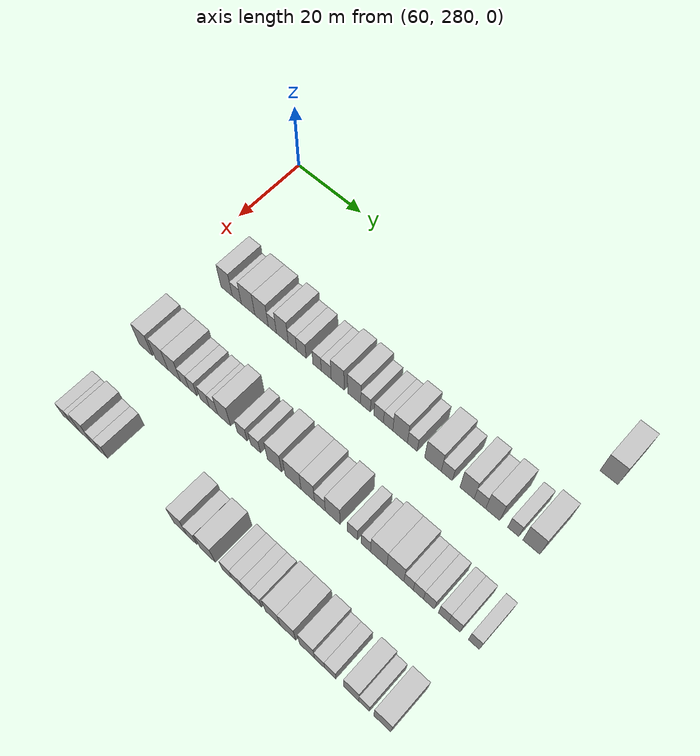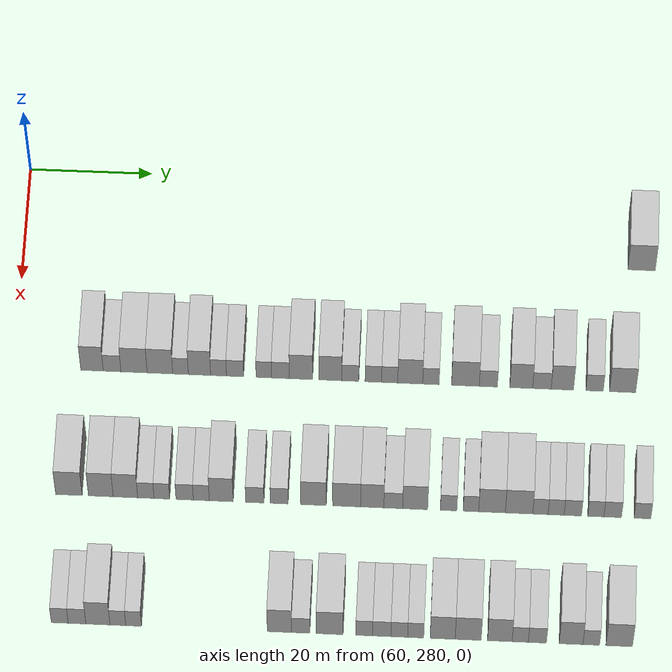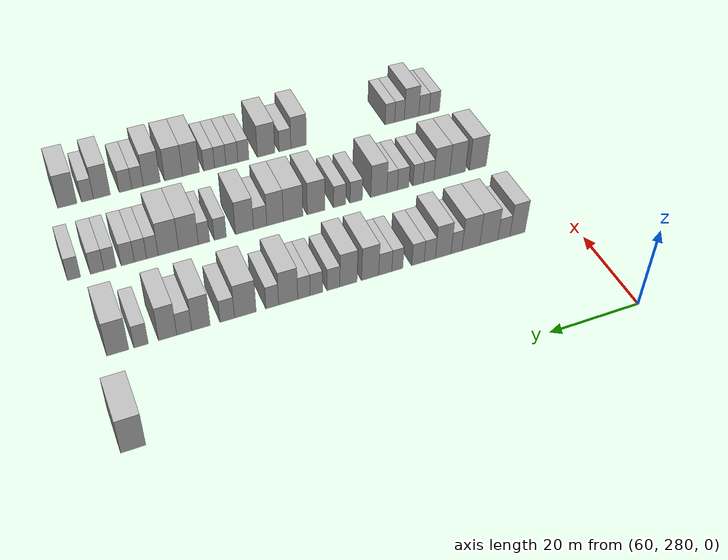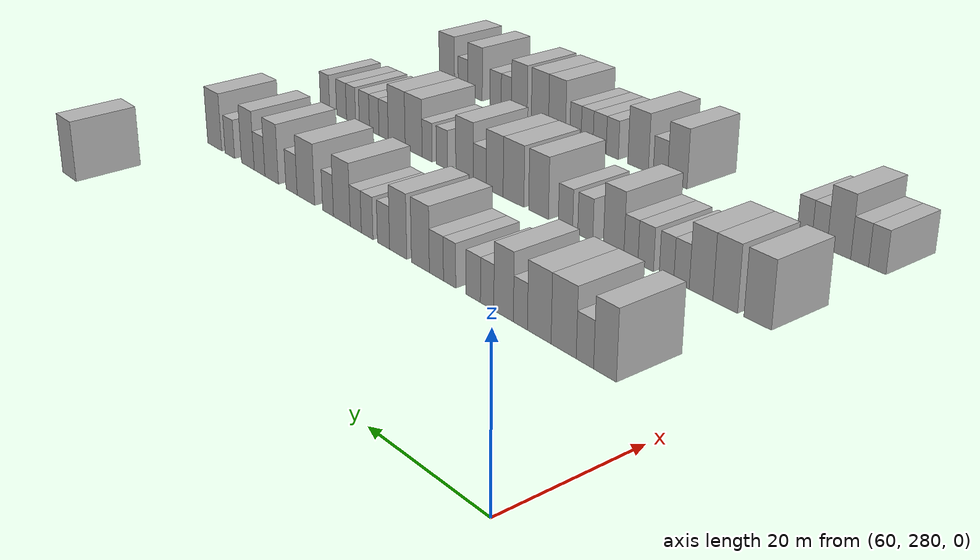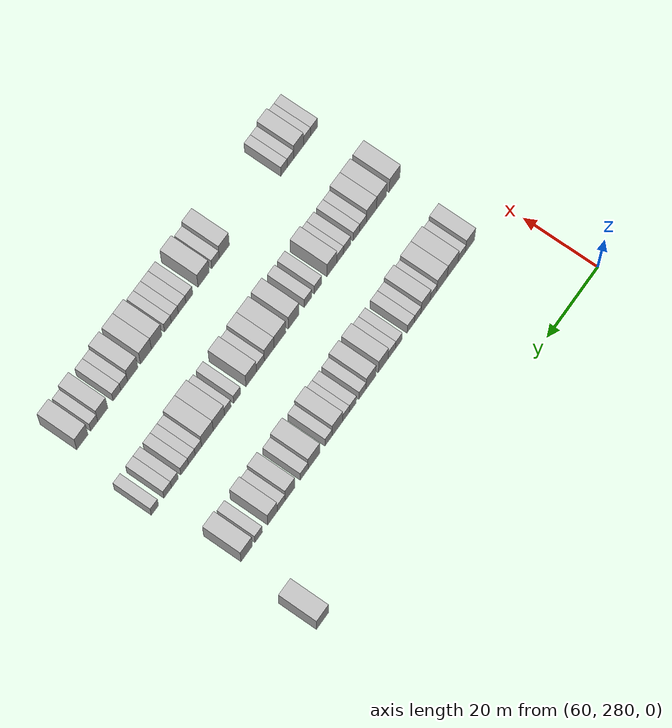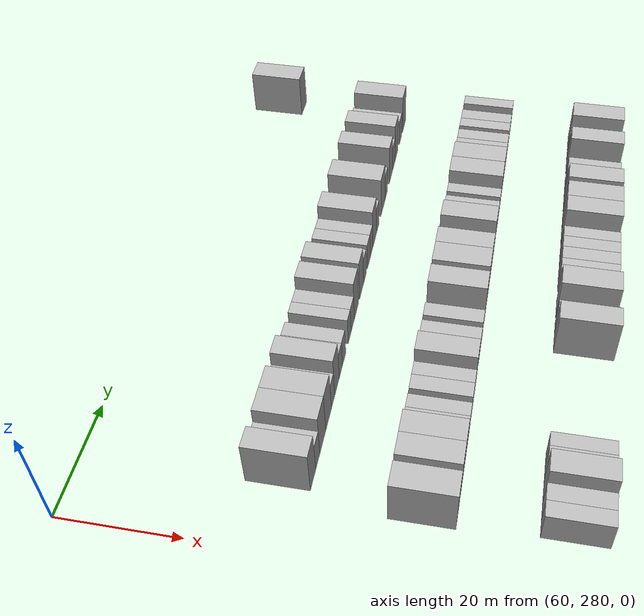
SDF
<sdf version="1.6">
 <world name="default">
  <model name="building_576">
   <static>1</static>
   <pose>69.0000 380.7478 0 0.000000 0.000000 0.000000</pose>
   <link name="link">
    <pose>0 0 4.50 0 0 0</pose>
    <collision name="collision"><geometry><box><size>10.0000 4.4731 9.0000</size></box></geometry></collision>
    <visual name="visual">
     <cast_shadows>0</cast_shadows>
     <geometry><box><size>10.0000 4.4731 9.0000</size></box></geometry>
     <material>
      <script>
       <uri>model://HANNAS_wall/materials/scripts</uri>
       <uri>model://HANNAS_wall/materials/textures</uri>
       <name>vrc/HANNAS_wall</name>
      </script>
     </material>
    </visual>
   </link>
  </model>
  <model name="building_745">
   <static>1</static>
   <pose>91.0000 292.4993 0 0.000000 0.000000 0.000000</pose>
   <link name="link">
    <pose>0 0 4.50 0 0 0</pose>
    <collision name="collision"><geometry><box><size>10.0000 3.6313 9.0000</size></box></geometry></collision>
    <visual name="visual">
     <cast_shadows>0</cast_shadows>
     <geometry><box><size>10.0000 3.6313 9.0000</size></box></geometry>
     <material>
      <script>
       <uri>model://HANNAS_wall/materials/scripts</uri>
       <uri>model://HANNAS_wall/materials/textures</uri>
       <name>vrc/HANNAS_wall</name>
      </script>
     </material>
    </visual>
   </link>
  </model>
  <model name="building_746">
   <static>1</static>
   <pose>91.0000 295.7418 0 0.000000 0.000000 0.000000</pose>
   <link name="link">
    <pose>0 0 3.00 0 0 0</pose>
    <collision name="collision"><geometry><box><size>10.0000 2.8537 6.0000</size></box></geometry></collision>
    <visual name="visual">
     <cast_shadows>0</cast_shadows>
     <geometry><box><size>10.0000 2.8537 6.0000</size></box></geometry>
     <material>
      <script>
       <uri>model://HANNAS_wall/materials/scripts</uri>
       <uri>model://HANNAS_wall/materials/textures</uri>
       <name>vrc/HANNAS_wall</name>
      </script>
     </material>
    </visual>
   </link>
  </model>
  <model name="building_747">
   <static>1</static>
   <pose>91.0000 299.2914 0 0.000000 0.000000 0.000000</pose>
   <link name="link">
    <pose>0 0 4.50 0 0 0</pose>
    <collision name="collision"><geometry><box><size>10.0000 4.2456 9.0000</size></box></geometry></collision>
    <visual name="visual">
     <cast_shadows>0</cast_shadows>
     <geometry><box><size>10.0000 4.2456 9.0000</size></box></geometry>
     <material>
      <script>
       <uri>model://HANNAS_wall/materials/scripts</uri>
       <uri>model://HANNAS_wall/materials/textures</uri>
       <name>vrc/HANNAS_wall</name>
      </script>
     </material>
    </visual>
   </link>
  </model>
  <model name="building_748">
   <static>1</static>
   <pose>91.0000 303.4832 0 0.000000 0.000000 0.000000</pose>
   <link name="link">
    <pose>0 0 4.50 0 0 0</pose>
    <collision name="collision"><geometry><box><size>10.0000 4.1380 9.0000</size></box></geometry></collision>
    <visual name="visual">
     <cast_shadows>0</cast_shadows>
     <geometry><box><size>10.0000 4.1380 9.0000</size></box></geometry>
     <material>
      <script>
       <uri>model://HANNAS_wall/materials/scripts</uri>
       <uri>model://HANNAS_wall/materials/textures</uri>
       <name>vrc/HANNAS_wall</name>
      </script>
     </material>
    </visual>
   </link>
  </model>
  <model name="building_749">
   <static>1</static>
   <pose>91.0000 306.8108 0 0.000000 0.000000 0.000000</pose>
   <link name="link">
    <pose>0 0 3.00 0 0 0</pose>
    <collision name="collision"><geometry><box><size>10.0000 2.5172 6.0000</size></box></geometry></collision>
    <visual name="visual">
     <cast_shadows>0</cast_shadows>
     <geometry><box><size>10.0000 2.5172 6.0000</size></box></geometry>
     <material>
      <script>
       <uri>model://HANNAS_wall/materials/scripts</uri>
       <uri>model://HANNAS_wall/materials/textures</uri>
       <name>vrc/HANNAS_wall</name>
      </script>
     </material>
    </visual>
   </link>
  </model>
  <model name="building_750">
   <static>1</static>
   <pose>91.0000 309.8726 0 0.000000 0.000000 0.000000</pose>
   <link name="link">
    <pose>0 0 4.50 0 0 0</pose>
    <collision name="collision"><geometry><box><size>10.0000 3.6064 9.0000</size></box></geometry></collision>
    <visual name="visual">
     <cast_shadows>0</cast_shadows>
     <geometry><box><size>10.0000 3.6064 9.0000</size></box></geometry>
     <material>
      <script>
       <uri>model://HANNAS_wall/materials/scripts</uri>
       <uri>model://HANNAS_wall/materials/textures</uri>
       <name>vrc/HANNAS_wall</name>
      </script>
     </material>
    </visual>
   </link>
  </model>
  <model name="building_751">
   <static>1</static>
   <pose>91.0000 312.9448 0 0.000000 0.000000 0.000000</pose>
   <link name="link">
    <pose>0 0 3.00 0 0 0</pose>
    <collision name="collision"><geometry><box><size>10.0000 2.5381 6.0000</size></box></geometry></collision>
    <visual name="visual">
     <cast_shadows>0</cast_shadows>
     <geometry><box><size>10.0000 2.5381 6.0000</size></box></geometry>
     <material>
      <script>
       <uri>model://HANNAS_wall/materials/scripts</uri>
       <uri>model://HANNAS_wall/materials/textures</uri>
       <name>vrc/HANNAS_wall</name>
      </script>
     </material>
    </visual>
   </link>
  </model>
  <model name="building_752">
   <static>1</static>
   <pose>91.0000 315.6144 0 0.000000 0.000000 0.000000</pose>
   <link name="link">
    <pose>0 0 3.00 0 0 0</pose>
    <collision name="collision"><geometry><box><size>10.0000 2.8011 6.0000</size></box></geometry></collision>
    <visual name="visual">
     <cast_shadows>0</cast_shadows>
     <geometry><box><size>10.0000 2.8011 6.0000</size></box></geometry>
     <material>
      <script>
       <uri>model://HANNAS_wall/materials/scripts</uri>
       <uri>model://HANNAS_wall/materials/textures</uri>
       <name>vrc/HANNAS_wall</name>
      </script>
     </material>
    </visual>
   </link>
  </model>
  <model name="building_753">
   <static>1</static>
   <pose>91.0000 320.2498 0 0.000000 0.000000 0.000000</pose>
   <link name="link">
    <pose>0 0 3.00 0 0 0</pose>
    <collision name="collision"><geometry><box><size>10.0000 2.4697 6.0000</size></box></geometry></collision>
    <visual name="visual">
     <cast_shadows>0</cast_shadows>
     <geometry><box><size>10.0000 2.4697 6.0000</size></box></geometry>
     <material>
      <script>
       <uri>model://HANNAS_wall/materials/scripts</uri>
       <uri>model://HANNAS_wall/materials/textures</uri>
       <name>vrc/HANNAS_wall</name>
      </script>
     </material>
    </visual>
   </link>
  </model>
  <model name="building_754">
   <static>1</static>
   <pose>91.0000 322.9322 0 0.000000 0.000000 0.000000</pose>
   <link name="link">
    <pose>0 0 3.00 0 0 0</pose>
    <collision name="collision"><geometry><box><size>10.0000 2.8950 6.0000</size></box></geometry></collision>
    <visual name="visual">
     <cast_shadows>0</cast_shadows>
     <geometry><box><size>10.0000 2.8950 6.0000</size></box></geometry>
     <material>
      <script>
       <uri>model://HANNAS_wall/materials/scripts</uri>
       <uri>model://HANNAS_wall/materials/textures</uri>
       <name>vrc/HANNAS_wall</name>
      </script>
     </material>
    </visual>
   </link>
  </model>
  <model name="building_755">
   <static>1</static>
   <pose>91.0000 326.2585 0 0.000000 0.000000 0.000000</pose>
   <link name="link">
    <pose>0 0 4.50 0 0 0</pose>
    <collision name="collision"><geometry><box><size>10.0000 3.7576 9.0000</size></box></geometry></collision>
    <visual name="visual">
     <cast_shadows>0</cast_shadows>
     <geometry><box><size>10.0000 3.7576 9.0000</size></box></geometry>
     <material>
      <script>
       <uri>model://HANNAS_wall/materials/scripts</uri>
       <uri>model://HANNAS_wall/materials/textures</uri>
       <name>vrc/HANNAS_wall</name>
      </script>
     </material>
    </visual>
   </link>
  </model>
  <model name="building_756">
   <static>1</static>
   <pose>91.0000 331.0062 0 0.000000 0.000000 0.000000</pose>
   <link name="link">
    <pose>0 0 4.50 0 0 0</pose>
    <collision name="collision"><geometry><box><size>10.0000 3.7378 9.0000</size></box></geometry></collision>
    <visual name="visual">
     <cast_shadows>0</cast_shadows>
     <geometry><box><size>10.0000 3.7378 9.0000</size></box></geometry>
     <material>
      <script>
       <uri>model://HANNAS_wall/materials/scripts</uri>
       <uri>model://HANNAS_wall/materials/textures</uri>
       <name>vrc/HANNAS_wall</name>
      </script>
     </material>
    </visual>
   </link>
  </model>
  <model name="building_757">
   <static>1</static>
   <pose>91.0000 334.2347 0 0.000000 0.000000 0.000000</pose>
   <link name="link">
    <pose>0 0 3.00 0 0 0</pose>
    <collision name="collision"><geometry><box><size>10.0000 2.7194 6.0000</size></box></geometry></collision>
    <visual name="visual">
     <cast_shadows>0</cast_shadows>
     <geometry><box><size>10.0000 2.7194 6.0000</size></box></geometry>
     <material>
      <script>
       <uri>model://HANNAS_wall/materials/scripts</uri>
       <uri>model://HANNAS_wall/materials/textures</uri>
       <name>vrc/HANNAS_wall</name>
      </script>
     </material>
    </visual>
   </link>
  </model>
  <model name="building_758">
   <static>1</static>
   <pose>91.0000 337.9305 0 0.000000 0.000000 0.000000</pose>
   <link name="link">
    <pose>0 0 3.00 0 0 0</pose>
    <collision name="collision"><geometry><box><size>10.0000 2.6721 6.0000</size></box></geometry></collision>
    <visual name="visual">
     <cast_shadows>0</cast_shadows>
     <geometry><box><size>10.0000 2.6721 6.0000</size></box></geometry>
     <material>
      <script>
       <uri>model://HANNAS_wall/materials/scripts</uri>
       <uri>model://HANNAS_wall/materials/textures</uri>
       <name>vrc/HANNAS_wall</name>
      </script>
     </material>
    </visual>
   </link>
  </model>
  <model name="building_759">
   <static>1</static>
   <pose>91.0000 340.5727 0 0.000000 0.000000 0.000000</pose>
   <link name="link">
    <pose>0 0 3.00 0 0 0</pose>
    <collision name="collision"><geometry><box><size>10.0000 2.6123 6.0000</size></box></geometry></collision>
    <visual name="visual">
     <cast_shadows>0</cast_shadows>
     <geometry><box><size>10.0000 2.6123 6.0000</size></box></geometry>
     <material>
      <script>
       <uri>model://HANNAS_wall/materials/scripts</uri>
       <uri>model://HANNAS_wall/materials/textures</uri>
       <name>vrc/HANNAS_wall</name>
      </script>
     </material>
    </visual>
   </link>
  </model>
  <model name="building_760">
   <static>1</static>
   <pose>91.0000 343.8841 0 0.000000 0.000000 0.000000</pose>
   <link name="link">
    <pose>0 0 4.50 0 0 0</pose>
    <collision name="collision"><geometry><box><size>10.0000 4.0105 9.0000</size></box></geometry></collision>
    <visual name="visual">
     <cast_shadows>0</cast_shadows>
     <geometry><box><size>10.0000 4.0105 9.0000</size></box></geometry>
     <material>
      <script>
       <uri>model://HANNAS_wall/materials/scripts</uri>
       <uri>model://HANNAS_wall/materials/textures</uri>
       <name>vrc/HANNAS_wall</name>
      </script>
     </material>
    </visual>
   </link>
  </model>
  <model name="building_761">
   <static>1</static>
   <pose>91.0000 347.2176 0 0.000000 0.000000 0.000000</pose>
   <link name="link">
    <pose>0 0 3.00 0 0 0</pose>
    <collision name="collision"><geometry><box><size>10.0000 2.6565 6.0000</size></box></geometry></collision>
    <visual name="visual">
     <cast_shadows>0</cast_shadows>
     <geometry><box><size>10.0000 2.6565 6.0000</size></box></geometry>
     <material>
      <script>
       <uri>model://HANNAS_wall/materials/scripts</uri>
       <uri>model://HANNAS_wall/materials/textures</uri>
       <name>vrc/HANNAS_wall</name>
      </script>
     </material>
    </visual>
   </link>
  </model>
  <model name="building_762">
   <static>1</static>
   <pose>91.0000 352.7737 0 0.000000 0.000000 0.000000</pose>
   <link name="link">
    <pose>0 0 4.50 0 0 0</pose>
    <collision name="collision"><geometry><box><size>10.0000 4.4558 9.0000</size></box></geometry></collision>
    <visual name="visual">
     <cast_shadows>0</cast_shadows>
     <geometry><box><size>10.0000 4.4558 9.0000</size></box></geometry>
     <material>
      <script>
       <uri>model://HANNAS_wall/materials/scripts</uri>
       <uri>model://HANNAS_wall/materials/textures</uri>
       <name>vrc/HANNAS_wall</name>
      </script>
     </material>
    </visual>
   </link>
  </model>
  <model name="building_763">
   <static>1</static>
   <pose>91.0000 356.4696 0 0.000000 0.000000 0.000000</pose>
   <link name="link">
    <pose>0 0 3.00 0 0 0</pose>
    <collision name="collision"><geometry><box><size>10.0000 2.9359 6.0000</size></box></geometry></collision>
    <visual name="visual">
     <cast_shadows>0</cast_shadows>
     <geometry><box><size>10.0000 2.9359 6.0000</size></box></geometry>
     <material>
      <script>
       <uri>model://HANNAS_wall/materials/scripts</uri>
       <uri>model://HANNAS_wall/materials/textures</uri>
       <name>vrc/HANNAS_wall</name>
      </script>
     </material>
    </visual>
   </link>
  </model>
  <model name="building_764">
   <static>1</static>
   <pose>91.0000 361.7782 0 0.000000 0.000000 0.000000</pose>
   <link name="link">
    <pose>0 0 4.50 0 0 0</pose>
    <collision name="collision"><geometry><box><size>10.0000 3.6814 9.0000</size></box></geometry></collision>
    <visual name="visual">
     <cast_shadows>0</cast_shadows>
     <geometry><box><size>10.0000 3.6814 9.0000</size></box></geometry>
     <material>
      <script>
       <uri>model://HANNAS_wall/materials/scripts</uri>
       <uri>model://HANNAS_wall/materials/textures</uri>
       <name>vrc/HANNAS_wall</name>
      </script>
     </material>
    </visual>
   </link>
  </model>
  <model name="building_765">
   <static>1</static>
   <pose>91.0000 365.1084 0 0.000000 0.000000 0.000000</pose>
   <link name="link">
    <pose>0 0 3.00 0 0 0</pose>
    <collision name="collision"><geometry><box><size>10.0000 2.9790 6.0000</size></box></geometry></collision>
    <visual name="visual">
     <cast_shadows>0</cast_shadows>
     <geometry><box><size>10.0000 2.9790 6.0000</size></box></geometry>
     <material>
      <script>
       <uri>model://HANNAS_wall/materials/scripts</uri>
       <uri>model://HANNAS_wall/materials/textures</uri>
       <name>vrc/HANNAS_wall</name>
      </script>
     </material>
    </visual>
   </link>
  </model>
  <model name="building_766">
   <static>1</static>
   <pose>91.0000 368.3986 0 0.000000 0.000000 0.000000</pose>
   <link name="link">
    <pose>0 0 4.50 0 0 0</pose>
    <collision name="collision"><geometry><box><size>10.0000 3.6014 9.0000</size></box></geometry></collision>
    <visual name="visual">
     <cast_shadows>0</cast_shadows>
     <geometry><box><size>10.0000 3.6014 9.0000</size></box></geometry>
     <material>
      <script>
       <uri>model://HANNAS_wall/materials/scripts</uri>
       <uri>model://HANNAS_wall/materials/textures</uri>
       <name>vrc/HANNAS_wall</name>
      </script>
     </material>
    </visual>
   </link>
  </model>
  <model name="building_767">
   <static>1</static>
   <pose>91.0000 373.5945 0 0.000000 0.000000 0.000000</pose>
   <link name="link">
    <pose>0 0 3.00 0 0 0</pose>
    <collision name="collision"><geometry><box><size>10.0000 2.7905 6.0000</size></box></geometry></collision>
    <visual name="visual">
     <cast_shadows>0</cast_shadows>
     <geometry><box><size>10.0000 2.7905 6.0000</size></box></geometry>
     <material>
      <script>
       <uri>model://HANNAS_wall/materials/scripts</uri>
       <uri>model://HANNAS_wall/materials/textures</uri>
       <name>vrc/HANNAS_wall</name>
      </script>
     </material>
    </visual>
   </link>
  </model>
  <model name="building_768">
   <static>1</static>
   <pose>91.0000 378.1013 0 0.000000 0.000000 0.000000</pose>
   <link name="link">
    <pose>0 0 4.50 0 0 0</pose>
    <collision name="collision"><geometry><box><size>10.0000 4.2231 9.0000</size></box></geometry></collision>
    <visual name="visual">
     <cast_shadows>0</cast_shadows>
     <geometry><box><size>10.0000 4.2231 9.0000</size></box></geometry>
     <material>
      <script>
       <uri>model://HANNAS_wall/materials/scripts</uri>
       <uri>model://HANNAS_wall/materials/textures</uri>
       <name>vrc/HANNAS_wall</name>
      </script>
     </material>
    </visual>
   </link>
  </model>
  <model name="building_923">
   <static>1</static>
   <pose>113.0000 290.2626 0 0.000000 0.000000 0.000000</pose>
   <link name="link">
    <pose>0 0 4.50 0 0 0</pose>
    <collision name="collision"><geometry><box><size>10.0000 4.2319 9.0000</size></box></geometry></collision>
    <visual name="visual">
     <cast_shadows>0</cast_shadows>
     <geometry><box><size>10.0000 4.2319 9.0000</size></box></geometry>
     <material>
      <script>
       <uri>model://HANNAS_wall/materials/scripts</uri>
       <uri>model://HANNAS_wall/materials/textures</uri>
       <name>vrc/HANNAS_wall</name>
      </script>
     </material>
    </visual>
   </link>
  </model>
  <model name="building_924">
   <static>1</static>
   <pose>113.0000 295.3542 0 0.000000 0.000000 0.000000</pose>
   <link name="link">
    <pose>0 0 4.50 0 0 0</pose>
    <collision name="collision"><geometry><box><size>10.0000 3.9513 9.0000</size></box></geometry></collision>
    <visual name="visual">
     <cast_shadows>0</cast_shadows>
     <geometry><box><size>10.0000 3.9513 9.0000</size></box></geometry>
     <material>
      <script>
       <uri>model://HANNAS_wall/materials/scripts</uri>
       <uri>model://HANNAS_wall/materials/textures</uri>
       <name>vrc/HANNAS_wall</name>
      </script>
     </material>
    </visual>
   </link>
  </model>
  <model name="building_925">
   <static>1</static>
   <pose>113.0000 299.2859 0 0.000000 0.000000 0.000000</pose>
   <link name="link">
    <pose>0 0 4.50 0 0 0</pose>
    <collision name="collision"><geometry><box><size>10.0000 3.9122 9.0000</size></box></geometry></collision>
    <visual name="visual">
     <cast_shadows>0</cast_shadows>
     <geometry><box><size>10.0000 3.9122 9.0000</size></box></geometry>
     <material>
      <script>
       <uri>model://HANNAS_wall/materials/scripts</uri>
       <uri>model://HANNAS_wall/materials/textures</uri>
       <name>vrc/HANNAS_wall</name>
      </script>
     </material>
    </visual>
   </link>
  </model>
  <model name="building_926">
   <static>1</static>
   <pose>113.0000 302.5495 0 0.000000 0.000000 0.000000</pose>
   <link name="link">
    <pose>0 0 3.00 0 0 0</pose>
    <collision name="collision"><geometry><box><size>10.0000 2.6150 6.0000</size></box></geometry></collision>
    <visual name="visual">
     <cast_shadows>0</cast_shadows>
     <geometry><box><size>10.0000 2.6150 6.0000</size></box></geometry>
     <material>
      <script>
       <uri>model://HANNAS_wall/materials/scripts</uri>
       <uri>model://HANNAS_wall/materials/textures</uri>
       <name>vrc/HANNAS_wall</name>
      </script>
     </material>
    </visual>
   </link>
  </model>
  <model name="building_927">
   <static>1</static>
   <pose>113.0000 305.1120 0 0.000000 0.000000 0.000000</pose>
   <link name="link">
    <pose>0 0 3.00 0 0 0</pose>
    <collision name="collision"><geometry><box><size>10.0000 2.5100 6.0000</size></box></geometry></collision>
    <visual name="visual">
     <cast_shadows>0</cast_shadows>
     <geometry><box><size>10.0000 2.5100 6.0000</size></box></geometry>
     <material>
      <script>
       <uri>model://HANNAS_wall/materials/scripts</uri>
       <uri>model://HANNAS_wall/materials/textures</uri>
       <name>vrc/HANNAS_wall</name>
      </script>
     </material>
    </visual>
   </link>
  </model>
  <model name="building_928">
   <static>1</static>
   <pose>113.0000 308.7537 0 0.000000 0.000000 0.000000</pose>
   <link name="link">
    <pose>0 0 3.00 0 0 0</pose>
    <collision name="collision"><geometry><box><size>10.0000 2.7732 6.0000</size></box></geometry></collision>
    <visual name="visual">
     <cast_shadows>0</cast_shadows>
     <geometry><box><size>10.0000 2.7732 6.0000</size></box></geometry>
     <material>
      <script>
       <uri>model://HANNAS_wall/materials/scripts</uri>
       <uri>model://HANNAS_wall/materials/textures</uri>
       <name>vrc/HANNAS_wall</name>
      </script>
     </material>
    </visual>
   </link>
  </model>
  <model name="building_929">
   <static>1</static>
   <pose>113.0000 311.4155 0 0.000000 0.000000 0.000000</pose>
   <link name="link">
    <pose>0 0 3.00 0 0 0</pose>
    <collision name="collision"><geometry><box><size>10.0000 2.5504 6.0000</size></box></geometry></collision>
    <visual name="visual">
     <cast_shadows>0</cast_shadows>
     <geometry><box><size>10.0000 2.5504 6.0000</size></box></geometry>
     <material>
      <script>
       <uri>model://HANNAS_wall/materials/scripts</uri>
       <uri>model://HANNAS_wall/materials/textures</uri>
       <name>vrc/HANNAS_wall</name>
      </script>
     </material>
    </visual>
   </link>
  </model>
  <model name="building_930">
   <static>1</static>
   <pose>113.0000 314.5971 0 0.000000 0.000000 0.000000</pose>
   <link name="link">
    <pose>0 0 4.50 0 0 0</pose>
    <collision name="collision"><geometry><box><size>10.0000 3.8128 9.0000</size></box></geometry></collision>
    <visual name="visual">
     <cast_shadows>0</cast_shadows>
     <geometry><box><size>10.0000 3.8128 9.0000</size></box></geometry>
     <material>
      <script>
       <uri>model://HANNAS_wall/materials/scripts</uri>
       <uri>model://HANNAS_wall/materials/textures</uri>
       <name>vrc/HANNAS_wall</name>
      </script>
     </material>
    </visual>
   </link>
  </model>
  <model name="building_931">
   <static>1</static>
   <pose>113.0000 319.9580 0 0.000000 0.000000 0.000000</pose>
   <link name="link">
    <pose>0 0 3.00 0 0 0</pose>
    <collision name="collision"><geometry><box><size>10.0000 2.9091 6.0000</size></box></geometry></collision>
    <visual name="visual">
     <cast_shadows>0</cast_shadows>
     <geometry><box><size>10.0000 2.9091 6.0000</size></box></geometry>
     <material>
      <script>
       <uri>model://HANNAS_wall/materials/scripts</uri>
       <uri>model://HANNAS_wall/materials/textures</uri>
       <name>vrc/HANNAS_wall</name>
      </script>
     </material>
    </visual>
   </link>
  </model>
  <model name="building_932">
   <static>1</static>
   <pose>113.0000 323.8371 0 0.000000 0.000000 0.000000</pose>
   <link name="link">
    <pose>0 0 3.00 0 0 0</pose>
    <collision name="collision"><geometry><box><size>10.0000 2.8490 6.0000</size></box></geometry></collision>
    <visual name="visual">
     <cast_shadows>0</cast_shadows>
     <geometry><box><size>10.0000 2.8490 6.0000</size></box></geometry>
     <material>
      <script>
       <uri>model://HANNAS_wall/materials/scripts</uri>
       <uri>model://HANNAS_wall/materials/textures</uri>
       <name>vrc/HANNAS_wall</name>
      </script>
     </material>
    </visual>
   </link>
  </model>
  <model name="building_933">
   <static>1</static>
   <pose>113.0000 329.3076 0 0.000000 0.000000 0.000000</pose>
   <link name="link">
    <pose>0 0 4.50 0 0 0</pose>
    <collision name="collision"><geometry><box><size>10.0000 4.0919 9.0000</size></box></geometry></collision>
    <visual name="visual">
     <cast_shadows>0</cast_shadows>
     <geometry><box><size>10.0000 4.0919 9.0000</size></box></geometry>
     <material>
      <script>
       <uri>model://HANNAS_wall/materials/scripts</uri>
       <uri>model://HANNAS_wall/materials/textures</uri>
       <name>vrc/HANNAS_wall</name>
      </script>
     </material>
    </visual>
   </link>
  </model>
  <model name="building_934">
   <static>1</static>
   <pose>113.0000 334.5837 0 0.000000 0.000000 0.000000</pose>
   <link name="link">
    <pose>0 0 4.50 0 0 0</pose>
    <collision name="collision"><geometry><box><size>10.0000 4.4603 9.0000</size></box></geometry></collision>
    <visual name="visual">
     <cast_shadows>0</cast_shadows>
     <geometry><box><size>10.0000 4.4603 9.0000</size></box></geometry>
     <material>
      <script>
       <uri>model://HANNAS_wall/materials/scripts</uri>
       <uri>model://HANNAS_wall/materials/textures</uri>
       <name>vrc/HANNAS_wall</name>
      </script>
     </material>
    </visual>
   </link>
  </model>
  <model name="building_935">
   <static>1</static>
   <pose>113.0000 338.6759 0 0.000000 0.000000 0.000000</pose>
   <link name="link">
    <pose>0 0 4.50 0 0 0</pose>
    <collision name="collision"><geometry><box><size>10.0000 3.7241 9.0000</size></box></geometry></collision>
    <visual name="visual">
     <cast_shadows>0</cast_shadows>
     <geometry><box><size>10.0000 3.7241 9.0000</size></box></geometry>
     <material>
      <script>
       <uri>model://HANNAS_wall/materials/scripts</uri>
       <uri>model://HANNAS_wall/materials/textures</uri>
       <name>vrc/HANNAS_wall</name>
      </script>
     </material>
    </visual>
   </link>
  </model>
  <model name="building_936">
   <static>1</static>
   <pose>113.0000 342.0283 0 0.000000 0.000000 0.000000</pose>
   <link name="link">
    <pose>0 0 3.00 0 0 0</pose>
    <collision name="collision"><geometry><box><size>10.0000 2.9809 6.0000</size></box></geometry></collision>
    <visual name="visual">
     <cast_shadows>0</cast_shadows>
     <geometry><box><size>10.0000 2.9809 6.0000</size></box></geometry>
     <material>
      <script>
       <uri>model://HANNAS_wall/materials/scripts</uri>
       <uri>model://HANNAS_wall/materials/textures</uri>
       <name>vrc/HANNAS_wall</name>
      </script>
     </material>
    </visual>
   </link>
  </model>
  <model name="building_937">
   <static>1</static>
   <pose>113.0000 345.5189 0 0.000000 0.000000 0.000000</pose>
   <link name="link">
    <pose>0 0 4.50 0 0 0</pose>
    <collision name="collision"><geometry><box><size>10.0000 4.0003 9.0000</size></box></geometry></collision>
    <visual name="visual">
     <cast_shadows>0</cast_shadows>
     <geometry><box><size>10.0000 4.0003 9.0000</size></box></geometry>
     <material>
      <script>
       <uri>model://HANNAS_wall/materials/scripts</uri>
       <uri>model://HANNAS_wall/materials/textures</uri>
       <name>vrc/HANNAS_wall</name>
      </script>
     </material>
    </visual>
   </link>
  </model>
  <model name="building_938">
   <static>1</static>
   <pose>113.0000 350.8404 0 0.000000 0.000000 0.000000</pose>
   <link name="link">
    <pose>0 0 3.00 0 0 0</pose>
    <collision name="collision"><geometry><box><size>10.0000 2.6426 6.0000</size></box></geometry></collision>
    <visual name="visual">
     <cast_shadows>0</cast_shadows>
     <geometry><box><size>10.0000 2.6426 6.0000</size></box></geometry>
     <material>
      <script>
       <uri>model://HANNAS_wall/materials/scripts</uri>
       <uri>model://HANNAS_wall/materials/textures</uri>
       <name>vrc/HANNAS_wall</name>
      </script>
     </material>
    </visual>
   </link>
  </model>
  <model name="building_939">
   <static>1</static>
   <pose>113.0000 354.3960 0 0.000000 0.000000 0.000000</pose>
   <link name="link">
    <pose>0 0 3.00 0 0 0</pose>
    <collision name="collision"><geometry><box><size>10.0000 2.4686 6.0000</size></box></geometry></collision>
    <visual name="visual">
     <cast_shadows>0</cast_shadows>
     <geometry><box><size>10.0000 2.4686 6.0000</size></box></geometry>
     <material>
      <script>
       <uri>model://HANNAS_wall/materials/scripts</uri>
       <uri>model://HANNAS_wall/materials/textures</uri>
       <name>vrc/HANNAS_wall</name>
      </script>
     </material>
    </visual>
   </link>
  </model>
  <model name="building_940">
   <static>1</static>
   <pose>113.0000 357.7544 0 0.000000 0.000000 0.000000</pose>
   <link name="link">
    <pose>0 0 4.50 0 0 0</pose>
    <collision name="collision"><geometry><box><size>10.0000 4.2484 9.0000</size></box></geometry></collision>
    <visual name="visual">
     <cast_shadows>0</cast_shadows>
     <geometry><box><size>10.0000 4.2484 9.0000</size></box></geometry>
     <material>
      <script>
       <uri>model://HANNAS_wall/materials/scripts</uri>
       <uri>model://HANNAS_wall/materials/textures</uri>
       <name>vrc/HANNAS_wall</name>
      </script>
     </material>
    </visual>
   </link>
  </model>
  <model name="building_941">
   <static>1</static>
   <pose>113.0000 362.0644 0 0.000000 0.000000 0.000000</pose>
   <link name="link">
    <pose>0 0 4.50 0 0 0</pose>
    <collision name="collision"><geometry><box><size>10.0000 4.3715 9.0000</size></box></geometry></collision>
    <visual name="visual">
     <cast_shadows>0</cast_shadows>
     <geometry><box><size>10.0000 4.3715 9.0000</size></box></geometry>
     <material>
      <script>
       <uri>model://HANNAS_wall/materials/scripts</uri>
       <uri>model://HANNAS_wall/materials/textures</uri>
       <name>vrc/HANNAS_wall</name>
      </script>
     </material>
    </visual>
   </link>
  </model>
  <model name="building_942">
   <static>1</static>
   <pose>113.0000 365.4634 0 0.000000 0.000000 0.000000</pose>
   <link name="link">
    <pose>0 0 3.00 0 0 0</pose>
    <collision name="collision"><geometry><box><size>10.0000 2.4265 6.0000</size></box></geometry></collision>
    <visual name="visual">
     <cast_shadows>0</cast_shadows>
     <geometry><box><size>10.0000 2.4265 6.0000</size></box></geometry>
     <material>
      <script>
       <uri>model://HANNAS_wall/materials/scripts</uri>
       <uri>model://HANNAS_wall/materials/textures</uri>
       <name>vrc/HANNAS_wall</name>
      </script>
     </material>
    </visual>
   </link>
  </model>
  <model name="building_943">
   <static>1</static>
   <pose>113.0000 367.9598 0 0.000000 0.000000 0.000000</pose>
   <link name="link">
    <pose>0 0 3.00 0 0 0</pose>
    <collision name="collision"><geometry><box><size>10.0000 2.5663 6.0000</size></box></geometry></collision>
    <visual name="visual">
     <cast_shadows>0</cast_shadows>
     <geometry><box><size>10.0000 2.5663 6.0000</size></box></geometry>
     <material>
      <script>
       <uri>model://HANNAS_wall/materials/scripts</uri>
       <uri>model://HANNAS_wall/materials/textures</uri>
       <name>vrc/HANNAS_wall</name>
      </script>
     </material>
    </visual>
   </link>
  </model>
  <model name="building_944">
   <static>1</static>
   <pose>113.0000 370.6290 0 0.000000 0.000000 0.000000</pose>
   <link name="link">
    <pose>0 0 3.00 0 0 0</pose>
    <collision name="collision"><geometry><box><size>10.0000 2.7721 6.0000</size></box></geometry></collision>
    <visual name="visual">
     <cast_shadows>0</cast_shadows>
     <geometry><box><size>10.0000 2.7721 6.0000</size></box></geometry>
     <material>
      <script>
       <uri>model://HANNAS_wall/materials/scripts</uri>
       <uri>model://HANNAS_wall/materials/textures</uri>
       <name>vrc/HANNAS_wall</name>
      </script>
     </material>
    </visual>
   </link>
  </model>
  <model name="building_945">
   <static>1</static>
   <pose>113.0000 374.2965 0 0.000000 0.000000 0.000000</pose>
   <link name="link">
    <pose>0 0 3.00 0 0 0</pose>
    <collision name="collision"><geometry><box><size>10.0000 2.5628 6.0000</size></box></geometry></collision>
    <visual name="visual">
     <cast_shadows>0</cast_shadows>
     <geometry><box><size>10.0000 2.5628 6.0000</size></box></geometry>
     <material>
      <script>
       <uri>model://HANNAS_wall/materials/scripts</uri>
       <uri>model://HANNAS_wall/materials/textures</uri>
       <name>vrc/HANNAS_wall</name>
      </script>
     </material>
    </visual>
   </link>
  </model>
  <model name="building_946">
   <static>1</static>
   <pose>113.0000 376.9746 0 0.000000 0.000000 0.000000</pose>
   <link name="link">
    <pose>0 0 3.00 0 0 0</pose>
    <collision name="collision"><geometry><box><size>10.0000 2.7936 6.0000</size></box></geometry></collision>
    <visual name="visual">
     <cast_shadows>0</cast_shadows>
     <geometry><box><size>10.0000 2.7936 6.0000</size></box></geometry>
     <material>
      <script>
       <uri>model://HANNAS_wall/materials/scripts</uri>
       <uri>model://HANNAS_wall/materials/textures</uri>
       <name>vrc/HANNAS_wall</name>
      </script>
     </material>
    </visual>
   </link>
  </model>
  <model name="building_947">
   <static>1</static>
   <pose>113.0000 381.7028 0 0.000000 0.000000 0.000000</pose>
   <link name="link">
    <pose>0 0 3.00 0 0 0</pose>
    <collision name="collision"><geometry><box><size>10.0000 2.6626 6.0000</size></box></geometry></collision>
    <visual name="visual">
     <cast_shadows>0</cast_shadows>
     <geometry><box><size>10.0000 2.6626 6.0000</size></box></geometry>
     <material>
      <script>
       <uri>model://HANNAS_wall/materials/scripts</uri>
       <uri>model://HANNAS_wall/materials/textures</uri>
       <name>vrc/HANNAS_wall</name>
      </script>
     </material>
    </visual>
   </link>
  </model>
  <model name="building_1107">
   <static>1</static>
   <pose>135.0000 290.3166 0 0.000000 0.000000 0.000000</pose>
   <link name="link">
    <pose>0 0 3.00 0 0 0</pose>
    <collision name="collision"><geometry><box><size>10.0000 2.6693 6.0000</size></box></geometry></collision>
    <visual name="visual">
     <cast_shadows>0</cast_shadows>
     <geometry><box><size>10.0000 2.6693 6.0000</size></box></geometry>
     <material>
      <script>
       <uri>model://HANNAS_wall/materials/scripts</uri>
       <uri>model://HANNAS_wall/materials/textures</uri>
       <name>vrc/HANNAS_wall</name>
      </script>
     </material>
    </visual>
   </link>
  </model>
  <model name="building_1108">
   <static>1</static>
   <pose>135.0000 293.0429 0 0.000000 0.000000 0.000000</pose>
   <link name="link">
    <pose>0 0 3.00 0 0 0</pose>
    <collision name="collision"><geometry><box><size>10.0000 2.7833 6.0000</size></box></geometry></collision>
    <visual name="visual">
     <cast_shadows>0</cast_shadows>
     <geometry><box><size>10.0000 2.7833 6.0000</size></box></geometry>
     <material>
      <script>
       <uri>model://HANNAS_wall/materials/scripts</uri>
       <uri>model://HANNAS_wall/materials/textures</uri>
       <name>vrc/HANNAS_wall</name>
      </script>
     </material>
    </visual>
   </link>
  </model>
  <model name="building_1109">
   <static>1</static>
   <pose>135.0000 296.3371 0 0.000000 0.000000 0.000000</pose>
   <link name="link">
    <pose>0 0 4.50 0 0 0</pose>
    <collision name="collision"><geometry><box><size>10.0000 3.8051 9.0000</size></box></geometry></collision>
    <visual name="visual">
     <cast_shadows>0</cast_shadows>
     <geometry><box><size>10.0000 3.8051 9.0000</size></box></geometry>
     <material>
      <script>
       <uri>model://HANNAS_wall/materials/scripts</uri>
       <uri>model://HANNAS_wall/materials/textures</uri>
       <name>vrc/HANNAS_wall</name>
      </script>
     </material>
    </visual>
   </link>
  </model>
  <model name="building_1110">
   <static>1</static>
   <pose>135.0000 299.4852 0 0.000000 0.000000 0.000000</pose>
   <link name="link">
    <pose>0 0 3.00 0 0 0</pose>
    <collision name="collision"><geometry><box><size>10.0000 2.4910 6.0000</size></box></geometry></collision>
    <visual name="visual">
     <cast_shadows>0</cast_shadows>
     <geometry><box><size>10.0000 2.4910 6.0000</size></box></geometry>
     <material>
      <script>
       <uri>model://HANNAS_wall/materials/scripts</uri>
       <uri>model://HANNAS_wall/materials/textures</uri>
       <name>vrc/HANNAS_wall</name>
      </script>
     </material>
    </visual>
   </link>
  </model>
  <model name="building_1111">
   <static>1</static>
   <pose>135.0000 301.9730 0 0.000000 0.000000 0.000000</pose>
   <link name="link">
    <pose>0 0 3.00 0 0 0</pose>
    <collision name="collision"><geometry><box><size>10.0000 2.4846 6.0000</size></box></geometry></collision>
    <visual name="visual">
     <cast_shadows>0</cast_shadows>
     <geometry><box><size>10.0000 2.4846 6.0000</size></box></geometry>
     <material>
      <script>
       <uri>model://HANNAS_wall/materials/scripts</uri>
       <uri>model://HANNAS_wall/materials/textures</uri>
       <name>vrc/HANNAS_wall</name>
      </script>
     </material>
    </visual>
   </link>
  </model>
  <model name="building_1112">
   <static>1</static>
   <pose>135.0000 324.9769 0 0.000000 0.000000 0.000000</pose>
   <link name="link">
    <pose>0 0 4.50 0 0 0</pose>
    <collision name="collision"><geometry><box><size>10.0000 3.8410 9.0000</size></box></geometry></collision>
    <visual name="visual">
     <cast_shadows>0</cast_shadows>
     <geometry><box><size>10.0000 3.8410 9.0000</size></box></geometry>
     <material>
      <script>
       <uri>model://HANNAS_wall/materials/scripts</uri>
       <uri>model://HANNAS_wall/materials/textures</uri>
       <name>vrc/HANNAS_wall</name>
      </script>
     </material>
    </visual>
   </link>
  </model>
  <model name="building_1113">
   <static>1</static>
   <pose>135.0000 328.3295 0 0.000000 0.000000 0.000000</pose>
   <link name="link">
    <pose>0 0 3.00 0 0 0</pose>
    <collision name="collision"><geometry><box><size>10.0000 2.8643 6.0000</size></box></geometry></collision>
    <visual name="visual">
     <cast_shadows>0</cast_shadows>
     <geometry><box><size>10.0000 2.8643 6.0000</size></box></geometry>
     <material>
      <script>
       <uri>model://HANNAS_wall/materials/scripts</uri>
       <uri>model://HANNAS_wall/materials/textures</uri>
       <name>vrc/HANNAS_wall</name>
      </script>
     </material>
    </visual>
   </link>
  </model>
  <model name="building_1114">
   <static>1</static>
   <pose>135.0000 332.8857 0 0.000000 0.000000 0.000000</pose>
   <link name="link">
    <pose>0 0 4.50 0 0 0</pose>
    <collision name="collision"><geometry><box><size>10.0000 4.2479 9.0000</size></box></geometry></collision>
    <visual name="visual">
     <cast_shadows>0</cast_shadows>
     <geometry><box><size>10.0000 4.2479 9.0000</size></box></geometry>
     <material>
      <script>
       <uri>model://HANNAS_wall/materials/scripts</uri>
       <uri>model://HANNAS_wall/materials/textures</uri>
       <name>vrc/HANNAS_wall</name>
      </script>
     </material>
    </visual>
   </link>
  </model>
  <model name="building_1115">
   <static>1</static>
   <pose>135.0000 338.3283 0 0.000000 0.000000 0.000000</pose>
   <link name="link">
    <pose>0 0 3.00 0 0 0</pose>
    <collision name="collision"><geometry><box><size>10.0000 2.6373 6.0000</size></box></geometry></collision>
    <visual name="visual">
     <cast_shadows>0</cast_shadows>
     <geometry><box><size>10.0000 2.6373 6.0000</size></box></geometry>
     <material>
      <script>
       <uri>model://HANNAS_wall/materials/scripts</uri>
       <uri>model://HANNAS_wall/materials/textures</uri>
       <name>vrc/HANNAS_wall</name>
      </script>
     </material>
    </visual>
   </link>
  </model>
  <model name="building_1116">
   <static>1</static>
   <pose>135.0000 341.0814 0 0.000000 0.000000 0.000000</pose>
   <link name="link">
    <pose>0 0 3.00 0 0 0</pose>
    <collision name="collision"><geometry><box><size>10.0000 2.8690 6.0000</size></box></geometry></collision>
    <visual name="visual">
     <cast_shadows>0</cast_shadows>
     <geometry><box><size>10.0000 2.8690 6.0000</size></box></geometry>
     <material>
      <script>
       <uri>model://HANNAS_wall/materials/scripts</uri>
       <uri>model://HANNAS_wall/materials/textures</uri>
       <name>vrc/HANNAS_wall</name>
      </script>
     </material>
    </visual>
   </link>
  </model>
  <model name="building_1117">
   <static>1</static>
   <pose>135.0000 343.8437 0 0.000000 0.000000 0.000000</pose>
   <link name="link">
    <pose>0 0 3.00 0 0 0</pose>
    <collision name="collision"><geometry><box><size>10.0000 2.6556 6.0000</size></box></geometry></collision>
    <visual name="visual">
     <cast_shadows>0</cast_shadows>
     <geometry><box><size>10.0000 2.6556 6.0000</size></box></geometry>
     <material>
      <script>
       <uri>model://HANNAS_wall/materials/scripts</uri>
       <uri>model://HANNAS_wall/materials/textures</uri>
       <name>vrc/HANNAS_wall</name>
      </script>
     </material>
    </visual>
   </link>
  </model>
  <model name="building_1118">
   <static>1</static>
   <pose>135.0000 346.4398 0 0.000000 0.000000 0.000000</pose>
   <link name="link">
    <pose>0 0 3.00 0 0 0</pose>
    <collision name="collision"><geometry><box><size>10.0000 2.5367 6.0000</size></box></geometry></collision>
    <visual name="visual">
     <cast_shadows>0</cast_shadows>
     <geometry><box><size>10.0000 2.5367 6.0000</size></box></geometry>
     <material>
      <script>
       <uri>model://HANNAS_wall/materials/scripts</uri>
       <uri>model://HANNAS_wall/materials/textures</uri>
       <name>vrc/HANNAS_wall</name>
      </script>
     </material>
    </visual>
   </link>
  </model>
  <model name="building_1119">
   <static>1</static>
   <pose>135.0000 350.6806 0 0.000000 0.000000 0.000000</pose>
   <link name="link">
    <pose>0 0 4.50 0 0 0</pose>
    <collision name="collision"><geometry><box><size>10.0000 3.9448 9.0000</size></box></geometry></collision>
    <visual name="visual">
     <cast_shadows>0</cast_shadows>
     <geometry><box><size>10.0000 3.9448 9.0000</size></box></geometry>
     <material>
      <script>
       <uri>model://HANNAS_wall/materials/scripts</uri>
       <uri>model://HANNAS_wall/materials/textures</uri>
       <name>vrc/HANNAS_wall</name>
      </script>
     </material>
    </visual>
   </link>
  </model>
  <model name="building_1120">
   <static>1</static>
   <pose>135.0000 354.6998 0 0.000000 0.000000 0.000000</pose>
   <link name="link">
    <pose>0 0 4.50 0 0 0</pose>
    <collision name="collision"><geometry><box><size>10.0000 4.0937 9.0000</size></box></geometry></collision>
    <visual name="visual">
     <cast_shadows>0</cast_shadows>
     <geometry><box><size>10.0000 4.0937 9.0000</size></box></geometry>
     <material>
      <script>
       <uri>model://HANNAS_wall/materials/scripts</uri>
       <uri>model://HANNAS_wall/materials/textures</uri>
       <name>vrc/HANNAS_wall</name>
      </script>
     </material>
    </visual>
   </link>
  </model>
  <model name="building_1121">
   <static>1</static>
   <pose>135.0000 359.6804 0 0.000000 0.000000 0.000000</pose>
   <link name="link">
    <pose>0 0 4.50 0 0 0</pose>
    <collision name="collision"><geometry><box><size>10.0000 3.8674 9.0000</size></box></geometry></collision>
    <visual name="visual">
     <cast_shadows>0</cast_shadows>
     <geometry><box><size>10.0000 3.8674 9.0000</size></box></geometry>
     <material>
      <script>
       <uri>model://HANNAS_wall/materials/scripts</uri>
       <uri>model://HANNAS_wall/materials/textures</uri>
       <name>vrc/HANNAS_wall</name>
      </script>
     </material>
    </visual>
   </link>
  </model>
  <model name="building_1122">
   <static>1</static>
   <pose>135.0000 362.8906 0 0.000000 0.000000 0.000000</pose>
   <link name="link">
    <pose>0 0 3.00 0 0 0</pose>
    <collision name="collision"><geometry><box><size>10.0000 2.5531 6.0000</size></box></geometry></collision>
    <visual name="visual">
     <cast_shadows>0</cast_shadows>
     <geometry><box><size>10.0000 2.5531 6.0000</size></box></geometry>
     <material>
      <script>
       <uri>model://HANNAS_wall/materials/scripts</uri>
       <uri>model://HANNAS_wall/materials/textures</uri>
       <name>vrc/HANNAS_wall</name>
      </script>
     </material>
    </visual>
   </link>
  </model>
  <model name="building_1123">
   <static>1</static>
   <pose>135.0000 365.5931 0 0.000000 0.000000 0.000000</pose>
   <link name="link">
    <pose>0 0 3.00 0 0 0</pose>
    <collision name="collision"><geometry><box><size>10.0000 2.8518 6.0000</size></box></geometry></collision>
    <visual name="visual">
     <cast_shadows>0</cast_shadows>
     <geometry><box><size>10.0000 2.8518 6.0000</size></box></geometry>
     <material>
      <script>
       <uri>model://HANNAS_wall/materials/scripts</uri>
       <uri>model://HANNAS_wall/materials/textures</uri>
       <name>vrc/HANNAS_wall</name>
      </script>
     </material>
    </visual>
   </link>
  </model>
  <model name="building_1124">
   <static>1</static>
   <pose>135.0000 370.8834 0 0.000000 0.000000 0.000000</pose>
   <link name="link">
    <pose>0 0 4.50 0 0 0</pose>
    <collision name="collision"><geometry><box><size>10.0000 3.7288 9.0000</size></box></geometry></collision>
    <visual name="visual">
     <cast_shadows>0</cast_shadows>
     <geometry><box><size>10.0000 3.7288 9.0000</size></box></geometry>
     <material>
      <script>
       <uri>model://HANNAS_wall/materials/scripts</uri>
       <uri>model://HANNAS_wall/materials/textures</uri>
       <name>vrc/HANNAS_wall</name>
      </script>
     </material>
    </visual>
   </link>
  </model>
  <model name="building_1125">
   <static>1</static>
   <pose>135.0000 374.0595 0 0.000000 0.000000 0.000000</pose>
   <link name="link">
    <pose>0 0 3.00 0 0 0</pose>
    <collision name="collision"><geometry><box><size>10.0000 2.6234 6.0000</size></box></geometry></collision>
    <visual name="visual">
     <cast_shadows>0</cast_shadows>
     <geometry><box><size>10.0000 2.6234 6.0000</size></box></geometry>
     <material>
      <script>
       <uri>model://HANNAS_wall/materials/scripts</uri>
       <uri>model://HANNAS_wall/materials/textures</uri>
       <name>vrc/HANNAS_wall</name>
      </script>
     </material>
    </visual>
   </link>
  </model>
  <model name="building_1126">
   <static>1</static>
   <pose>135.0000 378.4569 0 0.000000 0.000000 0.000000</pose>
   <link name="link">
    <pose>0 0 4.50 0 0 0</pose>
    <collision name="collision"><geometry><box><size>10.0000 4.1713 9.0000</size></box></geometry></collision>
    <visual name="visual">
     <cast_shadows>0</cast_shadows>
     <geometry><box><size>10.0000 4.1713 9.0000</size></box></geometry>
     <material>
      <script>
       <uri>model://HANNAS_wall/materials/scripts</uri>
       <uri>model://HANNAS_wall/materials/textures</uri>
       <name>vrc/HANNAS_wall</name>
      </script>
     </material>
    </visual>
   </link>
  </model>
 </world>
</sdf>
